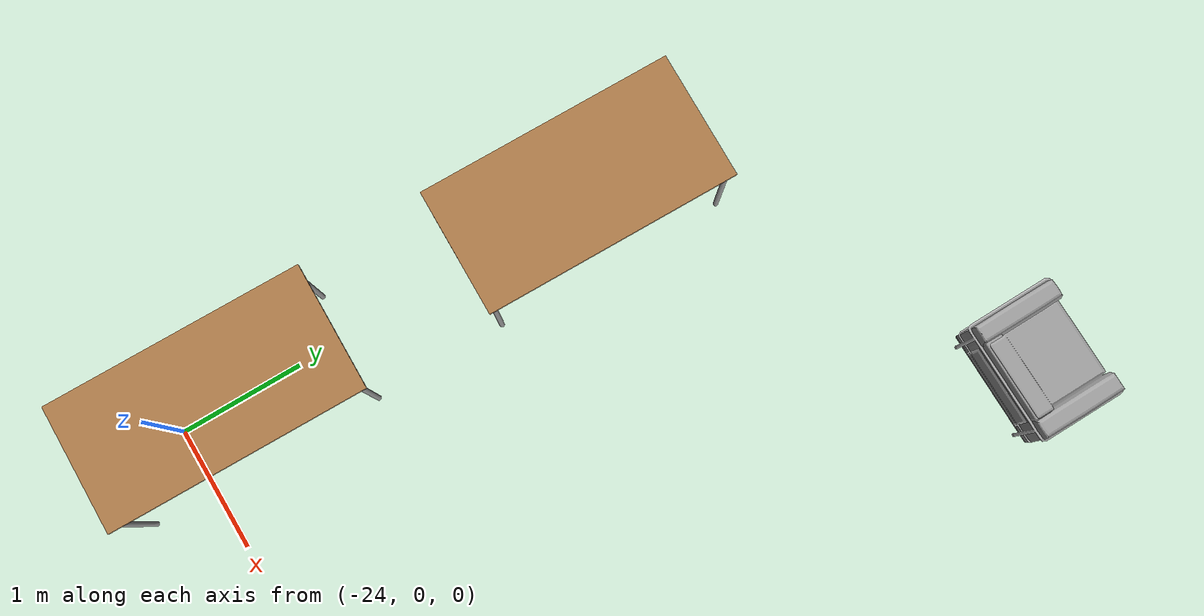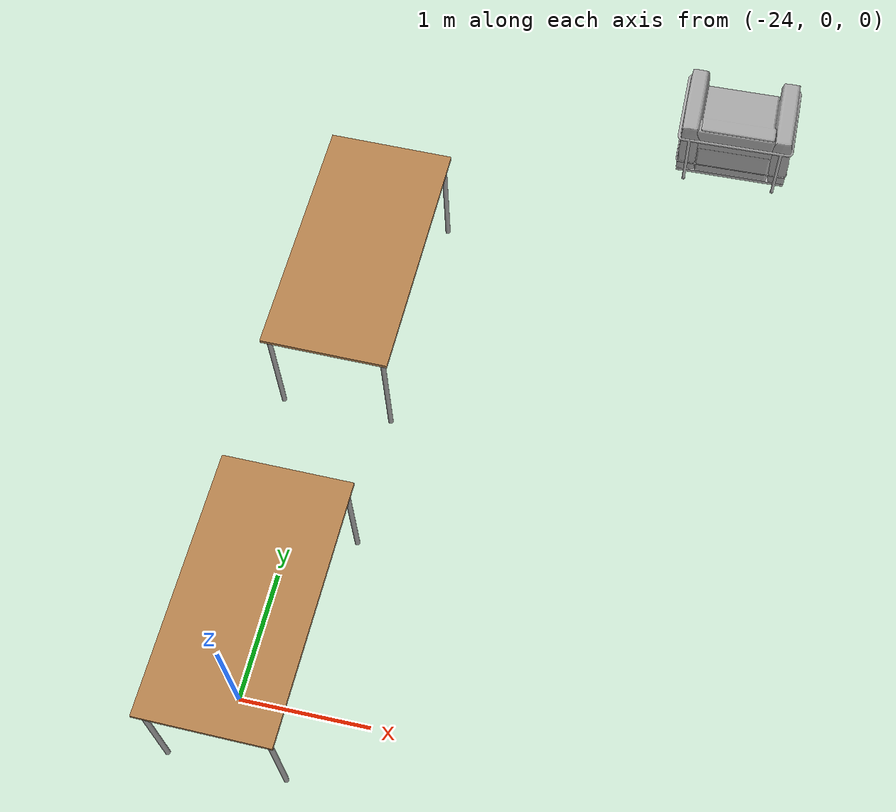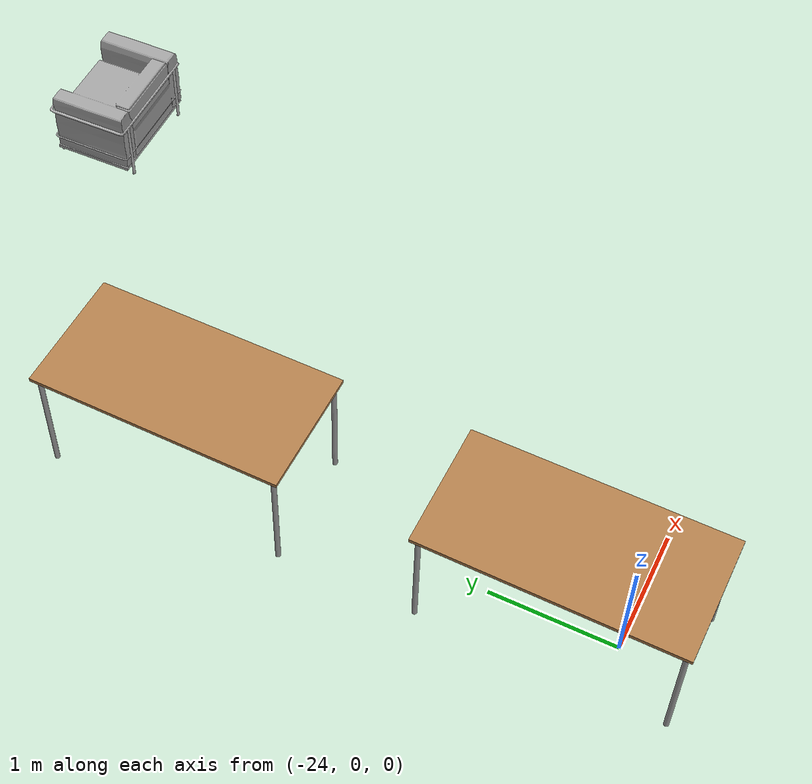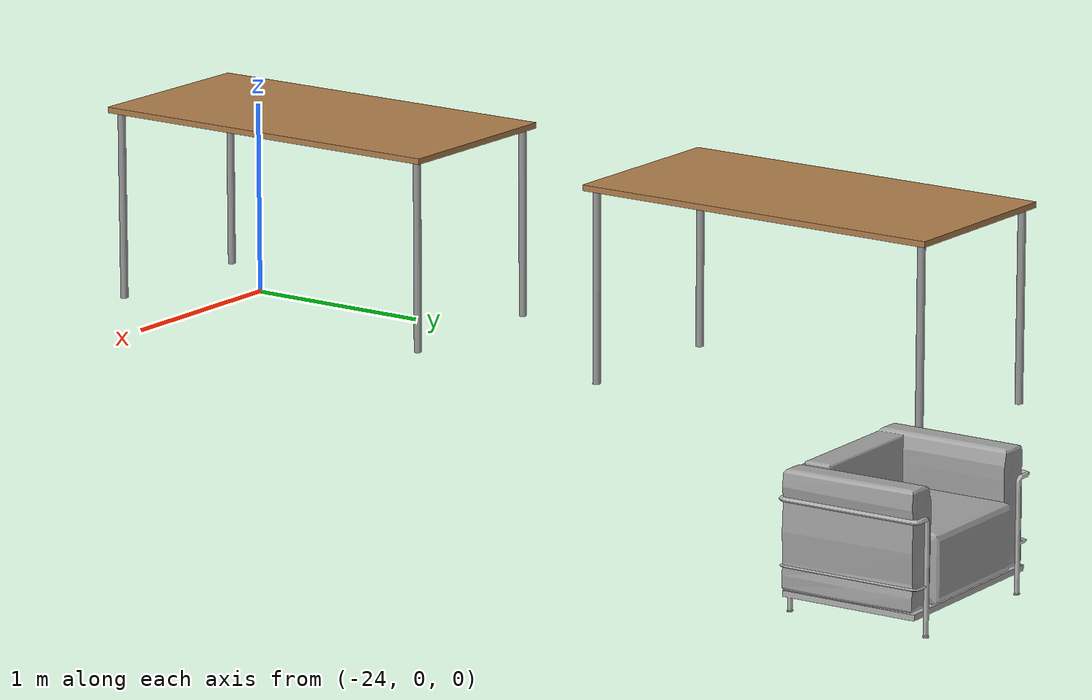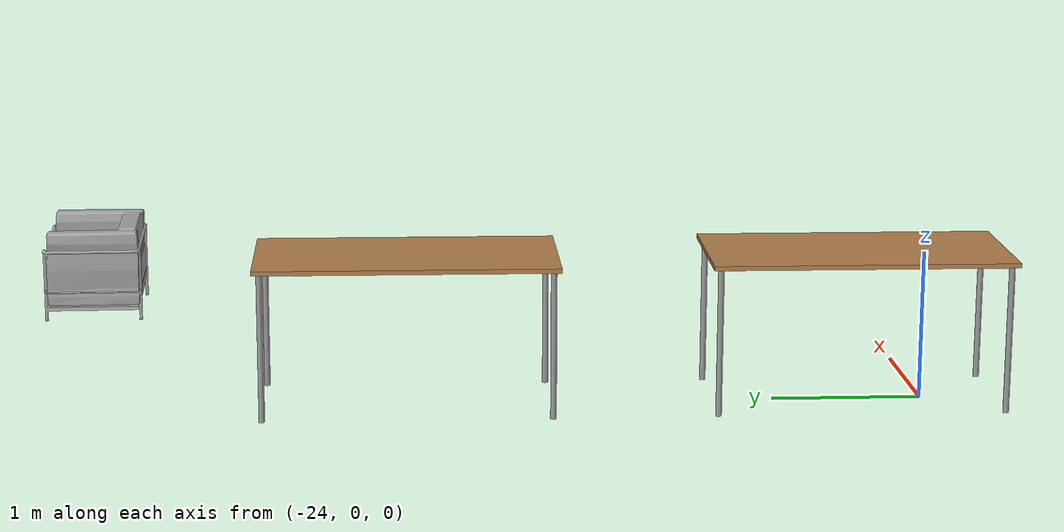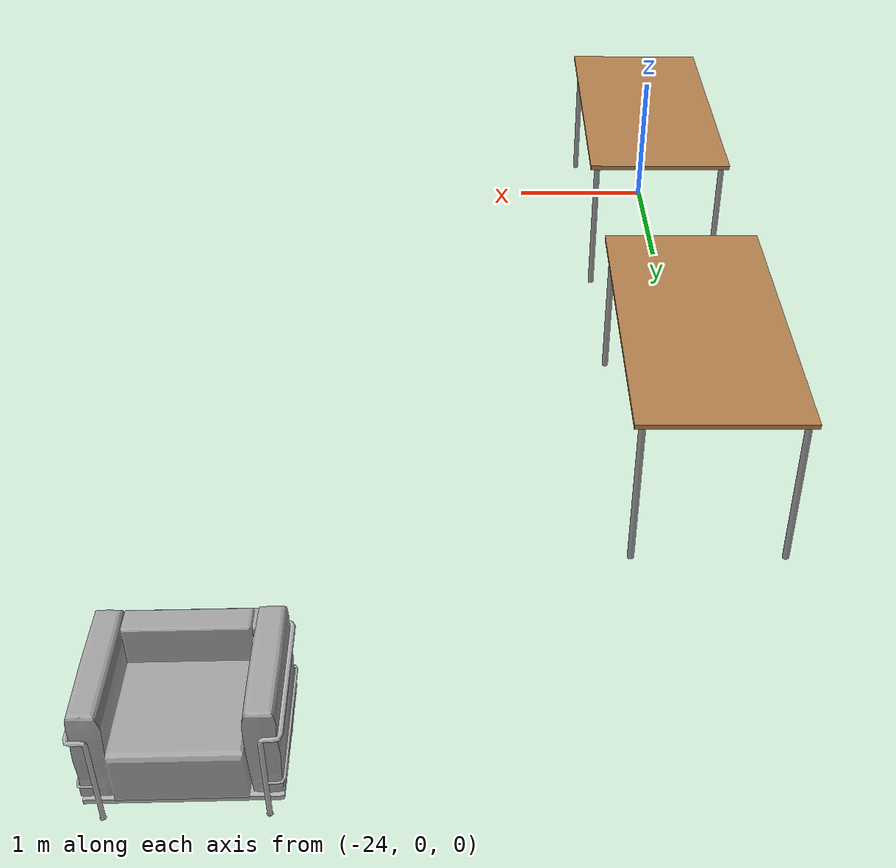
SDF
<sdf version="1.6">
 <model name="bibeg">
  <link name="link_clone_10">
   <pose>-23.931 3.4401 0 0 -0 1.56126</pose>
   <inertial>
    <mass>1</mass>
    <inertia><ixx>1</ixx><ixy>0</ixy><ixz>0</ixz><iyy>1</iyy><iyz>0</iyz><izz>1</izz></inertia>
   </inertial>
   <visual name="visual1">
    <pose>0 0 1 0 -0 0</pose>
    <geometry><box><size>2 1 0.03</size></box></geometry>
    <material>
     <script><uri>file://media/materials/scripts/gazebo.material</uri><name>Gazebo/Wood</name></script>
     <shader type="vertex"><normal_map>__default__</normal_map></shader>
     <ambient>1 1 1 1</ambient>
     <diffuse>1 1 1 1</diffuse>
     <specular>0.2 0.2 0.2 1</specular>
     <emissive>0 0 0 1</emissive>
    </material>
   </visual>
   <visual name="front_left_leg">
    <pose>0.95 0.45 0.5 0 -0 0</pose>
    <geometry><cylinder><radius>0.02</radius><length>1</length></cylinder></geometry>
    <material>
     <script><uri>file://media/materials/scripts/gazebo.material</uri><name>Gazebo/Grey</name></script>
     <shader type="vertex"><normal_map>__default__</normal_map></shader>
     <ambient>0.3 0.3 0.3 1</ambient>
     <diffuse>0.7 0.7 0.7 1</diffuse>
     <specular>0.01 0.01 0.01 1</specular>
     <emissive>0 0 0 1</emissive>
    </material>
   </visual>
   <visual name="front_right_leg">
    <pose>0.95 -0.45 0.5 0 -0 0</pose>
    <geometry><cylinder><radius>0.02</radius><length>1</length></cylinder></geometry>
    <material>
     <script><uri>file://media/materials/scripts/gazebo.material</uri><name>Gazebo/Grey</name></script>
     <shader type="vertex"><normal_map>__default__</normal_map></shader>
     <ambient>0.3 0.3 0.3 1</ambient>
     <diffuse>0.7 0.7 0.7 1</diffuse>
     <specular>0.01 0.01 0.01 1</specular>
     <emissive>0 0 0 1</emissive>
    </material>
   </visual>
   <visual name="back_right_leg">
    <pose>-0.95 -0.45 0.5 0 -0 0</pose>
    <geometry><cylinder><radius>0.02</radius><length>1</length></cylinder></geometry>
    <material>
     <script><uri>file://media/materials/scripts/gazebo.material</uri><name>Gazebo/Grey</name></script>
     <shader type="vertex"><normal_map>__default__</normal_map></shader>
     <ambient>0.3 0.3 0.3 1</ambient>
     <diffuse>0.7 0.7 0.7 1</diffuse>
     <specular>0.01 0.01 0.01 1</specular>
     <emissive>0 0 0 1</emissive>
    </material>
   </visual>
   <visual name="back_left_leg">
    <pose>-0.95 0.45 0.5 0 -0 0</pose>
    <geometry><cylinder><radius>0.02</radius><length>1</length></cylinder></geometry>
    <material>
     <script><uri>file://media/materials/scripts/gazebo.material</uri><name>Gazebo/Grey</name></script>
     <shader type="vertex"><normal_map>__default__</normal_map></shader>
     <ambient>0.3 0.3 0.3 1</ambient>
     <diffuse>0.7 0.7 0.7 1</diffuse>
     <specular>0.01 0.01 0.01 1</specular>
     <emissive>0 0 0 1</emissive>
    </material>
   </visual>
   <collision name="surface">
    <pose>0 0 1 0 -0 0</pose>
    <geometry><box><size>2 1 0.03</size></box></geometry>
    <surface>
     <friction>
      <ode><mu>1</mu><mu2>1</mu2><fdir1>0 0 0</fdir1><slip1>0</slip1><slip2>0</slip2></ode>
      <torsional>
       <coefficient>1</coefficient>
       <patch_radius>0</patch_radius>
       <surface_radius>0</surface_radius>
       <use_patch_radius>1</use_patch_radius>
       <ode><slip>0</slip></ode>
      </torsional>
     </friction>
     <bounce><restitution_coefficient>0</restitution_coefficient><threshold>1e+06</threshold></bounce>
     <contact>
      <collide_without_contact>0</collide_without_contact>
      <collide_without_contact_bitmask>1</collide_without_contact_bitmask>
      <collide_bitmask>1</collide_bitmask>
      <ode>
       <soft_cfm>0</soft_cfm>
       <soft_erp>0.2</soft_erp>
       <kp>1e+13</kp>
       <kd>1</kd>
       <max_vel>0.01</max_vel>
       <min_depth>0</min_depth>
      </ode>
      <bullet>
       <split_impulse>1</split_impulse>
       <split_impulse_penetration_threshold>-0.01</split_impulse_penetration_threshold>
       <soft_cfm>0</soft_cfm>
       <soft_erp>0.2</soft_erp>
       <kp>1e+13</kp>
       <kd>1</kd>
      </bullet>
     </contact>
    </surface>
   </collision>
   <collision name="front_left_leg_0">
    <pose>0.95 0.45 0.5 0 -0 0</pose>
    <geometry><cylinder><radius>0.02</radius><length>1</length></cylinder></geometry>
    <surface>
     <friction>
      <ode><mu>1</mu><mu2>1</mu2><fdir1>0 0 0</fdir1><slip1>0</slip1><slip2>0</slip2></ode>
      <torsional>
       <coefficient>1</coefficient>
       <patch_radius>0</patch_radius>
       <surface_radius>0</surface_radius>
       <use_patch_radius>1</use_patch_radius>
       <ode><slip>0</slip></ode>
      </torsional>
     </friction>
     <bounce><restitution_coefficient>0</restitution_coefficient><threshold>1e+06</threshold></bounce>
     <contact>
      <collide_without_contact>0</collide_without_contact>
      <collide_without_contact_bitmask>1</collide_without_contact_bitmask>
      <collide_bitmask>1</collide_bitmask>
      <ode>
       <soft_cfm>0</soft_cfm>
       <soft_erp>0.2</soft_erp>
       <kp>1e+13</kp>
       <kd>1</kd>
       <max_vel>0.01</max_vel>
       <min_depth>0</min_depth>
      </ode>
      <bullet>
       <split_impulse>1</split_impulse>
       <split_impulse_penetration_threshold>-0.01</split_impulse_penetration_threshold>
       <soft_cfm>0</soft_cfm>
       <soft_erp>0.2</soft_erp>
       <kp>1e+13</kp>
       <kd>1</kd>
      </bullet>
     </contact>
    </surface>
   </collision>
   <collision name="front_right_leg_0">
    <pose>0.95 -0.45 0.5 0 -0 0</pose>
    <geometry><cylinder><radius>0.02</radius><length>1</length></cylinder></geometry>
    <surface>
     <friction>
      <ode><mu>1</mu><mu2>1</mu2><fdir1>0 0 0</fdir1><slip1>0</slip1><slip2>0</slip2></ode>
      <torsional>
       <coefficient>1</coefficient>
       <patch_radius>0</patch_radius>
       <surface_radius>0</surface_radius>
       <use_patch_radius>1</use_patch_radius>
       <ode><slip>0</slip></ode>
      </torsional>
     </friction>
     <bounce><restitution_coefficient>0</restitution_coefficient><threshold>1e+06</threshold></bounce>
     <contact>
      <collide_without_contact>0</collide_without_contact>
      <collide_without_contact_bitmask>1</collide_without_contact_bitmask>
      <collide_bitmask>1</collide_bitmask>
      <ode>
       <soft_cfm>0</soft_cfm>
       <soft_erp>0.2</soft_erp>
       <kp>1e+13</kp>
       <kd>1</kd>
       <max_vel>0.01</max_vel>
       <min_depth>0</min_depth>
      </ode>
      <bullet>
       <split_impulse>1</split_impulse>
       <split_impulse_penetration_threshold>-0.01</split_impulse_penetration_threshold>
       <soft_cfm>0</soft_cfm>
       <soft_erp>0.2</soft_erp>
       <kp>1e+13</kp>
       <kd>1</kd>
      </bullet>
     </contact>
    </surface>
   </collision>
   <collision name="back_right_leg_0">
    <pose>-0.95 -0.45 0.5 0 -0 0</pose>
    <geometry><cylinder><radius>0.02</radius><length>1</length></cylinder></geometry>
    <surface>
     <friction>
      <ode><mu>1</mu><mu2>1</mu2><fdir1>0 0 0</fdir1><slip1>0</slip1><slip2>0</slip2></ode>
      <torsional>
       <coefficient>1</coefficient>
       <patch_radius>0</patch_radius>
       <surface_radius>0</surface_radius>
       <use_patch_radius>1</use_patch_radius>
       <ode><slip>0</slip></ode>
      </torsional>
     </friction>
     <bounce><restitution_coefficient>0</restitution_coefficient><threshold>1e+06</threshold></bounce>
     <contact>
      <collide_without_contact>0</collide_without_contact>
      <collide_without_contact_bitmask>1</collide_without_contact_bitmask>
      <collide_bitmask>1</collide_bitmask>
      <ode>
       <soft_cfm>0</soft_cfm>
       <soft_erp>0.2</soft_erp>
       <kp>1e+13</kp>
       <kd>1</kd>
       <max_vel>0.01</max_vel>
       <min_depth>0</min_depth>
      </ode>
      <bullet>
       <split_impulse>1</split_impulse>
       <split_impulse_penetration_threshold>-0.01</split_impulse_penetration_threshold>
       <soft_cfm>0</soft_cfm>
       <soft_erp>0.2</soft_erp>
       <kp>1e+13</kp>
       <kd>1</kd>
      </bullet>
     </contact>
    </surface>
   </collision>
   <collision name="back_left_leg_0">
    <pose>-0.68 0.38 0.5 0 -0 0</pose>
    <geometry><cylinder><radius>0.02</radius><length>1</length></cylinder></geometry>
    <surface>
     <friction>
      <ode><mu>1</mu><mu2>1</mu2><fdir1>0 0 0</fdir1><slip1>0</slip1><slip2>0</slip2></ode>
      <torsional>
       <coefficient>1</coefficient>
       <patch_radius>0</patch_radius>
       <surface_radius>0</surface_radius>
       <use_patch_radius>1</use_patch_radius>
       <ode><slip>0</slip></ode>
      </torsional>
     </friction>
     <bounce><restitution_coefficient>0</restitution_coefficient><threshold>1e+06</threshold></bounce>
     <contact>
      <collide_without_contact>0</collide_without_contact>
      <collide_without_contact_bitmask>1</collide_without_contact_bitmask>
      <collide_bitmask>1</collide_bitmask>
      <ode>
       <soft_cfm>0</soft_cfm>
       <soft_erp>0.2</soft_erp>
       <kp>1e+13</kp>
       <kd>1</kd>
       <max_vel>0.01</max_vel>
       <min_depth>0</min_depth>
      </ode>
      <bullet>
       <split_impulse>1</split_impulse>
       <split_impulse_penetration_threshold>-0.01</split_impulse_penetration_threshold>
       <soft_cfm>0</soft_cfm>
       <soft_erp>0.2</soft_erp>
       <kp>1e+13</kp>
       <kd>1</kd>
      </bullet>
     </contact>
    </surface>
   </collision>
  </link>
  <link name="link_clone_11">
   <pose>-23.9353 0.453583 0 0 -0 1.56126</pose>
   <inertial>
    <mass>1</mass>
    <inertia><ixx>1</ixx><ixy>0</ixy><ixz>0</ixz><iyy>1</iyy><iyz>0</iyz><izz>1</izz></inertia>
   </inertial>
   <visual name="visual1">
    <pose>0 0 1 0 -0 0</pose>
    <geometry><box><size>2 1 0.03</size></box></geometry>
    <material>
     <script><uri>file://media/materials/scripts/gazebo.material</uri><name>Gazebo/Wood</name></script>
     <shader type="vertex"><normal_map>__default__</normal_map></shader>
     <ambient>1 1 1 1</ambient>
     <diffuse>1 1 1 1</diffuse>
     <specular>0.2 0.2 0.2 1</specular>
     <emissive>0 0 0 1</emissive>
    </material>
   </visual>
   <visual name="front_left_leg">
    <pose>0.95 0.45 0.5 0 -0 0</pose>
    <geometry><cylinder><radius>0.02</radius><length>1</length></cylinder></geometry>
    <material>
     <script><uri>file://media/materials/scripts/gazebo.material</uri><name>Gazebo/Grey</name></script>
     <shader type="vertex"><normal_map>__default__</normal_map></shader>
     <ambient>0.3 0.3 0.3 1</ambient>
     <diffuse>0.7 0.7 0.7 1</diffuse>
     <specular>0.01 0.01 0.01 1</specular>
     <emissive>0 0 0 1</emissive>
    </material>
   </visual>
   <visual name="front_right_leg">
    <pose>0.95 -0.45 0.5 0 -0 0</pose>
    <geometry><cylinder><radius>0.02</radius><length>1</length></cylinder></geometry>
    <material>
     <script><uri>file://media/materials/scripts/gazebo.material</uri><name>Gazebo/Grey</name></script>
     <shader type="vertex"><normal_map>__default__</normal_map></shader>
     <ambient>0.3 0.3 0.3 1</ambient>
     <diffuse>0.7 0.7 0.7 1</diffuse>
     <specular>0.01 0.01 0.01 1</specular>
     <emissive>0 0 0 1</emissive>
    </material>
   </visual>
   <visual name="back_right_leg">
    <pose>-0.95 -0.45 0.5 0 -0 0</pose>
    <geometry><cylinder><radius>0.02</radius><length>1</length></cylinder></geometry>
    <material>
     <script><uri>file://media/materials/scripts/gazebo.material</uri><name>Gazebo/Grey</name></script>
     <shader type="vertex"><normal_map>__default__</normal_map></shader>
     <ambient>0.3 0.3 0.3 1</ambient>
     <diffuse>0.7 0.7 0.7 1</diffuse>
     <specular>0.01 0.01 0.01 1</specular>
     <emissive>0 0 0 1</emissive>
    </material>
   </visual>
   <visual name="back_left_leg">
    <pose>-0.95 0.45 0.5 0 -0 0</pose>
    <geometry><cylinder><radius>0.02</radius><length>1</length></cylinder></geometry>
    <material>
     <script><uri>file://media/materials/scripts/gazebo.material</uri><name>Gazebo/Grey</name></script>
     <shader type="vertex"><normal_map>__default__</normal_map></shader>
     <ambient>0.3 0.3 0.3 1</ambient>
     <diffuse>0.7 0.7 0.7 1</diffuse>
     <specular>0.01 0.01 0.01 1</specular>
     <emissive>0 0 0 1</emissive>
    </material>
   </visual>
   <collision name="surface">
    <pose>0 0 1 0 -0 0</pose>
    <geometry><box><size>2 1 0.03</size></box></geometry>
    <surface>
     <friction>
      <ode><mu>1</mu><mu2>1</mu2><fdir1>0 0 0</fdir1><slip1>0</slip1><slip2>0</slip2></ode>
      <torsional>
       <coefficient>1</coefficient>
       <patch_radius>0</patch_radius>
       <surface_radius>0</surface_radius>
       <use_patch_radius>1</use_patch_radius>
       <ode><slip>0</slip></ode>
      </torsional>
     </friction>
     <bounce><restitution_coefficient>0</restitution_coefficient><threshold>1e+06</threshold></bounce>
     <contact>
      <collide_without_contact>0</collide_without_contact>
      <collide_without_contact_bitmask>1</collide_without_contact_bitmask>
      <collide_bitmask>1</collide_bitmask>
      <ode>
       <soft_cfm>0</soft_cfm>
       <soft_erp>0.2</soft_erp>
       <kp>1e+13</kp>
       <kd>1</kd>
       <max_vel>0.01</max_vel>
       <min_depth>0</min_depth>
      </ode>
      <bullet>
       <split_impulse>1</split_impulse>
       <split_impulse_penetration_threshold>-0.01</split_impulse_penetration_threshold>
       <soft_cfm>0</soft_cfm>
       <soft_erp>0.2</soft_erp>
       <kp>1e+13</kp>
       <kd>1</kd>
      </bullet>
     </contact>
    </surface>
   </collision>
   <collision name="front_left_leg_0">
    <pose>0.95 0.45 0.5 0 -0 0</pose>
    <geometry><cylinder><radius>0.02</radius><length>1</length></cylinder></geometry>
    <surface>
     <friction>
      <ode><mu>1</mu><mu2>1</mu2><fdir1>0 0 0</fdir1><slip1>0</slip1><slip2>0</slip2></ode>
      <torsional>
       <coefficient>1</coefficient>
       <patch_radius>0</patch_radius>
       <surface_radius>0</surface_radius>
       <use_patch_radius>1</use_patch_radius>
       <ode><slip>0</slip></ode>
      </torsional>
     </friction>
     <bounce><restitution_coefficient>0</restitution_coefficient><threshold>1e+06</threshold></bounce>
     <contact>
      <collide_without_contact>0</collide_without_contact>
      <collide_without_contact_bitmask>1</collide_without_contact_bitmask>
      <collide_bitmask>1</collide_bitmask>
      <ode>
       <soft_cfm>0</soft_cfm>
       <soft_erp>0.2</soft_erp>
       <kp>1e+13</kp>
       <kd>1</kd>
       <max_vel>0.01</max_vel>
       <min_depth>0</min_depth>
      </ode>
      <bullet>
       <split_impulse>1</split_impulse>
       <split_impulse_penetration_threshold>-0.01</split_impulse_penetration_threshold>
       <soft_cfm>0</soft_cfm>
       <soft_erp>0.2</soft_erp>
       <kp>1e+13</kp>
       <kd>1</kd>
      </bullet>
     </contact>
    </surface>
   </collision>
   <collision name="front_right_leg_0">
    <pose>0.95 -0.45 0.5 0 -0 0</pose>
    <geometry><cylinder><radius>0.02</radius><length>1</length></cylinder></geometry>
    <surface>
     <friction>
      <ode><mu>1</mu><mu2>1</mu2><fdir1>0 0 0</fdir1><slip1>0</slip1><slip2>0</slip2></ode>
      <torsional>
       <coefficient>1</coefficient>
       <patch_radius>0</patch_radius>
       <surface_radius>0</surface_radius>
       <use_patch_radius>1</use_patch_radius>
       <ode><slip>0</slip></ode>
      </torsional>
     </friction>
     <bounce><restitution_coefficient>0</restitution_coefficient><threshold>1e+06</threshold></bounce>
     <contact>
      <collide_without_contact>0</collide_without_contact>
      <collide_without_contact_bitmask>1</collide_without_contact_bitmask>
      <collide_bitmask>1</collide_bitmask>
      <ode>
       <soft_cfm>0</soft_cfm>
       <soft_erp>0.2</soft_erp>
       <kp>1e+13</kp>
       <kd>1</kd>
       <max_vel>0.01</max_vel>
       <min_depth>0</min_depth>
      </ode>
      <bullet>
       <split_impulse>1</split_impulse>
       <split_impulse_penetration_threshold>-0.01</split_impulse_penetration_threshold>
       <soft_cfm>0</soft_cfm>
       <soft_erp>0.2</soft_erp>
       <kp>1e+13</kp>
       <kd>1</kd>
      </bullet>
     </contact>
    </surface>
   </collision>
   <collision name="back_right_leg_0">
    <pose>-0.95 -0.45 0.5 0 -0 0</pose>
    <geometry><cylinder><radius>0.02</radius><length>1</length></cylinder></geometry>
    <surface>
     <friction>
      <ode><mu>1</mu><mu2>1</mu2><fdir1>0 0 0</fdir1><slip1>0</slip1><slip2>0</slip2></ode>
      <torsional>
       <coefficient>1</coefficient>
       <patch_radius>0</patch_radius>
       <surface_radius>0</surface_radius>
       <use_patch_radius>1</use_patch_radius>
       <ode><slip>0</slip></ode>
      </torsional>
     </friction>
     <bounce><restitution_coefficient>0</restitution_coefficient><threshold>1e+06</threshold></bounce>
     <contact>
      <collide_without_contact>0</collide_without_contact>
      <collide_without_contact_bitmask>1</collide_without_contact_bitmask>
      <collide_bitmask>1</collide_bitmask>
      <ode>
       <soft_cfm>0</soft_cfm>
       <soft_erp>0.2</soft_erp>
       <kp>1e+13</kp>
       <kd>1</kd>
       <max_vel>0.01</max_vel>
       <min_depth>0</min_depth>
      </ode>
      <bullet>
       <split_impulse>1</split_impulse>
       <split_impulse_penetration_threshold>-0.01</split_impulse_penetration_threshold>
       <soft_cfm>0</soft_cfm>
       <soft_erp>0.2</soft_erp>
       <kp>1e+13</kp>
       <kd>1</kd>
      </bullet>
     </contact>
    </surface>
   </collision>
   <collision name="back_left_leg_0">
    <pose>-0.68 0.38 0.5 0 -0 0</pose>
    <geometry><cylinder><radius>0.02</radius><length>1</length></cylinder></geometry>
    <surface>
     <friction>
      <ode><mu>1</mu><mu2>1</mu2><fdir1>0 0 0</fdir1><slip1>0</slip1><slip2>0</slip2></ode>
      <torsional>
       <coefficient>1</coefficient>
       <patch_radius>0</patch_radius>
       <surface_radius>0</surface_radius>
       <use_patch_radius>1</use_patch_radius>
       <ode><slip>0</slip></ode>
      </torsional>
     </friction>
     <bounce><restitution_coefficient>0</restitution_coefficient><threshold>1e+06</threshold></bounce>
     <contact>
      <collide_without_contact>0</collide_without_contact>
      <collide_without_contact_bitmask>1</collide_without_contact_bitmask>
      <collide_bitmask>1</collide_bitmask>
      <ode>
       <soft_cfm>0</soft_cfm>
       <soft_erp>0.2</soft_erp>
       <kp>1e+13</kp>
       <kd>1</kd>
       <max_vel>0.01</max_vel>
       <min_depth>0</min_depth>
      </ode>
      <bullet>
       <split_impulse>1</split_impulse>
       <split_impulse_penetration_threshold>-0.01</split_impulse_penetration_threshold>
       <soft_cfm>0</soft_cfm>
       <soft_erp>0.2</soft_erp>
       <kp>1e+13</kp>
       <kd>1</kd>
      </bullet>
     </contact>
    </surface>
   </collision>
  </link>
  <model name="chair_set_1_3_clone_1">
   <link name="link_16">
    <pose>0.07217 0.114259 -0.032065 0 -0 1.57</pose>
    <visual name="visual">
     <geometry><mesh><uri>model://chair_set_1/meshes/chair_frame.dae</uri><scale>1 1 1</scale></mesh></geometry>
     <material>
      <lighting>1</lighting>
      <ambient>0.3 0.3 0.3 1</ambient>
      <diffuse>0.7 0.7 0.7 1</diffuse>
      <specular>0.01 0.01 0.01 1</specular>
      <emissive>0 0 0 1</emissive>
      <shader type="vertex"><normal_map>__default__</normal_map></shader>
     </material>
    </visual>
    <collision name="collision">
     <geometry><mesh><uri>model://chair_set_1/meshes/chair_frame.dae</uri><scale>1 1 1</scale></mesh></geometry>
    </collision>
   </link>
   <link name="link_17">
    <pose>0.069192 0.1237 -0.032065 0 -0 1.57</pose>
    <visual name="visual">
     <geometry><mesh><uri>model://chair_set_1/meshes/chair_cushions.dae</uri><scale>1 1 1</scale></mesh></geometry>
     <material>
      <script>
       <uri>model://chair_set_1/materials/scripts</uri>
       <uri>model://chair_set_1/materials/textures</uri>
       <name>chair_set_1</name>
      </script>
     </material>
    </visual>
    <collision name="collision">
     <geometry><mesh><uri>model://chair_set_1/meshes/chair_cushions.dae</uri><scale>1 1 1</scale></mesh></geometry>
    </collision>
   </link>
   <link name="link_18">
    <pose>0.606963 -0.367766 -0.032065 0 -0 0</pose>
    <visual name="visual">
     <geometry>
      <mesh><uri>model://chair_set_1/meshes/sofa_cushions_back.dae</uri><scale>1 1 1</scale></mesh>
     </geometry>
     <material>
      <script>
       <uri>model://chair_set_1/materials/scripts</uri>
       <uri>model://chair_set_1/materials/textures</uri>
       <name>chair_set_1</name>
      </script>
     </material>
    </visual>
    <collision name="collision">
     <geometry>
      <mesh><uri>model://chair_set_1/meshes/sofa_cushions_back.dae</uri><scale>1 1 1</scale></mesh>
     </geometry>
    </collision>
   </link>
   <static>1</static>
   <pose>-21.1935 5.74565 0 0 0 -3.12094</pose>
  </model>
  <static>1</static>
 </model>
</sdf>
